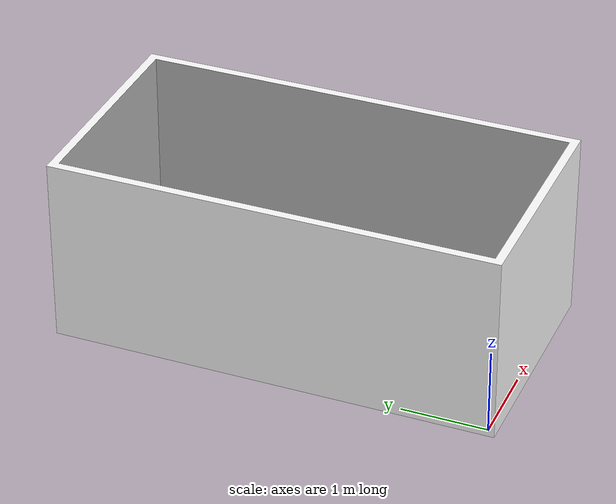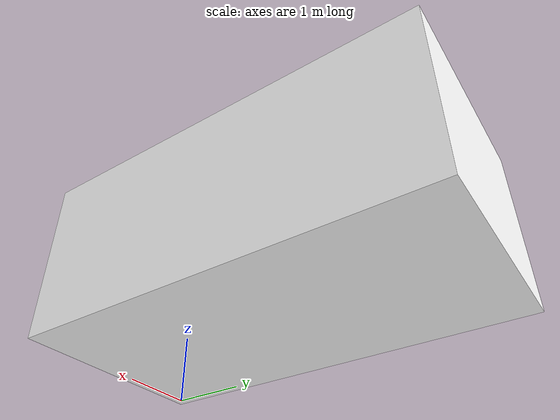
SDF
<?xml version='1.0'?>
<sdf version='1.6'>
  <model name='Corridor_2_5_x_5_5'>
    <link name='link_0'>
      <visual name='visual'>
        <geometry>
          <mesh>
            <uri>model://corridor_2_5_x_5_5/corridor.dae</uri>
            <scale>1 1 1</scale>
          </mesh>
        </geometry>
        <cast_shadows>0</cast_shadows>
      </visual>
      <collision name='collision'>
        <geometry>
          <mesh>
            <uri>model://corridor_2_5_x_5_5/corridor.dae</uri>
          </mesh>
        </geometry>
      </collision>
    </link>
    <static>1</static>
  </model>
</sdf>
